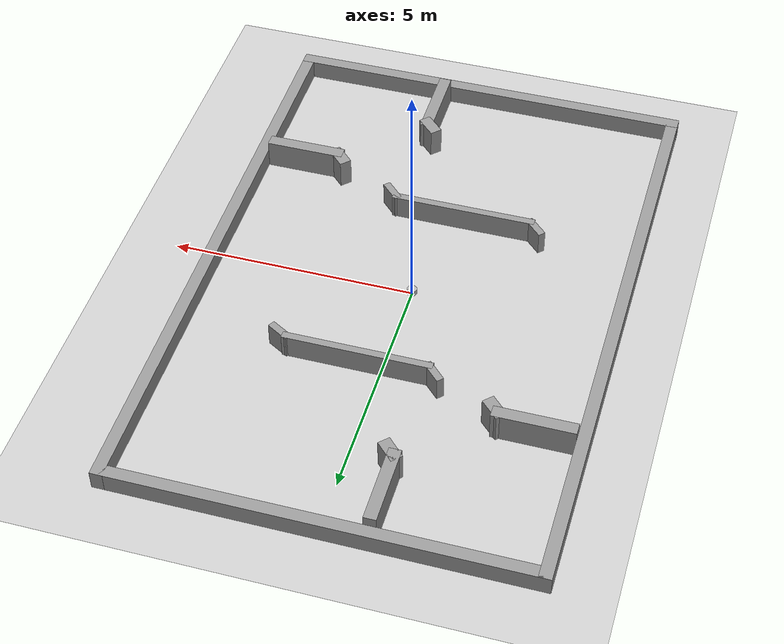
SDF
<sdf version="1.7">
 <world name="default">
  <light name="sun" type="directional">
   <pose>0 0 10 0 -0 0</pose>
   <diffuse>0.8 0.8 0.8 1</diffuse>
   <specular>0.2 0.2 0.2 1</specular>
   <attenuation>
    <range>1000</range>
    <constant>0.9</constant>
    <linear>0.01</linear>
    <quadratic>0.001</quadratic>
   </attenuation>
   <direction>-0.5 0.1 -0.9</direction>
   <spot><inner_angle>0</inner_angle><outer_angle>0</outer_angle><falloff>0</falloff></spot>
  </light>
  <model name="ground_plane">
   <static>1</static>
   <link name="link">
    <collision name="collision">
     <geometry><plane><normal>0 0 1</normal><size>100 100</size></plane></geometry>
     <surface><friction><ode><mu>100</mu><mu2>50</mu2></ode></friction></surface>
    </collision>
    <visual name="visual">
     <cast_shadows>0</cast_shadows>
     <geometry><plane><normal>0 0 1</normal><size>100 100</size></plane></geometry>
     <material>
      <script><uri>file://media/materials/scripts/gazebo.material</uri><name>Gazebo/Grey</name></script>
     </material>
    </visual>
   </link>
  </model>
  <gravity>0 0 -9.8</gravity>
  <magnetic_field>6e-06 2.3e-05 -4.2e-05</magnetic_field>
  <atmosphere type="adiabatic"/>
  <physics type="ode">
   <max_step_size>0.001</max_step_size>
   <real_time_factor>1</real_time_factor>
   <real_time_update_rate>1000</real_time_update_rate>
  </physics>
  <scene><ambient>0.4 0.4 0.4 1</ambient><background>0.7 0.7 0.7 1</background><shadows>1</shadows></scene>
  <audio><device>default</device></audio>
  <spherical_coordinates>
   <surface_model>EARTH_WGS84</surface_model>
   <latitude_deg>0</latitude_deg>
   <longitude_deg>0</longitude_deg>
   <elevation>0</elevation>
   <heading_deg>0</heading_deg>
  </spherical_coordinates>
  <model name="3V3">
   <link name="Wall_16">
    <collision name="Wall_16_Collision">
     <geometry><box><size>12.5 0.25 0.4</size></box></geometry>
     <pose>0 0 0.2 0 -0 0</pose>
    </collision>
    <visual name="Wall_16_Visual">
     <pose>0 0 0.2 0 -0 0</pose>
     <geometry><box><size>12.5 0.25 0.4</size></box></geometry>
     <material>
      <script><uri>file://media/materials/scripts/gazebo.material</uri><name>Gazebo/Grey</name></script>
      <ambient>1 1 1 1</ambient>
     </material>
     <meta><layer>0</layer></meta>
    </visual>
    <pose>-4.125 0 0 0 -0 1.5708</pose>
   </link>
   <link name="Wall_18">
    <collision name="Wall_18_Collision">
     <geometry><box><size>8.5 0.25 0.4</size></box></geometry>
     <pose>0 0 0.2 0 -0 0</pose>
    </collision>
    <visual name="Wall_18_Visual">
     <pose>0 0 0.2 0 -0 0</pose>
     <geometry><box><size>8.5 0.25 0.4</size></box></geometry>
     <material>
      <script><uri>file://media/materials/scripts/gazebo.material</uri><name>Gazebo/Grey</name></script>
      <ambient>1 1 1 1</ambient>
     </material>
     <meta><layer>0</layer></meta>
    </visual>
    <pose>0 6.125 0 0 -0 3.14159</pose>
   </link>
   <link name="Wall_20">
    <collision name="Wall_20_Collision">
     <geometry><box><size>12.5 0.25 0.4</size></box></geometry>
     <pose>0 0 0.2 0 -0 0</pose>
    </collision>
    <visual name="Wall_20_Visual">
     <pose>0 0 0.2 0 -0 0</pose>
     <geometry><box><size>12.5 0.25 0.4</size></box></geometry>
     <material>
      <script><uri>file://media/materials/scripts/gazebo.material</uri><name>Gazebo/Grey</name></script>
      <ambient>1 1 1 1</ambient>
     </material>
     <meta><layer>0</layer></meta>
    </visual>
    <pose>4.125 0 0 0 -0 1.5708</pose>
   </link>
   <link name="Wall_22">
    <collision name="Wall_22_Collision">
     <geometry><box><size>1.625 0.25 0.6</size></box></geometry>
     <pose>0 0 0.3 0 -0 0</pose>
    </collision>
    <visual name="Wall_22_Visual">
     <pose>0 0 0.3 0 -0 0</pose>
     <geometry><box><size>1.625 0.25 0.6</size></box></geometry>
     <material>
      <script><uri>file://media/materials/scripts/gazebo.material</uri><name>Gazebo/Grey</name></script>
      <ambient>1 1 1 1</ambient>
     </material>
     <meta><layer>0</layer></meta>
    </visual>
    <pose>3.1875 -3.026 0 0 -0 3.14159</pose>
   </link>
   <link name="Wall_24">
    <collision name="Wall_24_Collision">
     <geometry><box><size>1.625 0.25 0.6</size></box></geometry>
     <pose>0 0 0.3 0 -0 0</pose>
    </collision>
    <visual name="Wall_24_Visual">
     <pose>0 0 0.3 0 -0 0</pose>
     <geometry><box><size>1.625 0.25 0.6</size></box></geometry>
     <material>
      <script><uri>file://media/materials/scripts/gazebo.material</uri><name>Gazebo/Grey</name></script>
      <ambient>1 1 1 1</ambient>
     </material>
     <meta><layer>0</layer></meta>
    </visual>
    <pose>-3.1875 3.026 0 0 -0 0</pose>
   </link>
   <link name="Wall_26">
    <collision name="Wall_26_Collision">
     <geometry><box><size>1.625 0.25 0.6</size></box></geometry>
     <pose>0 0 0.3 0 -0 0</pose>
    </collision>
    <visual name="Wall_26_Visual">
     <pose>0 0 0.3 0 -0 0</pose>
     <geometry><box><size>1.625 0.25 0.6</size></box></geometry>
     <material>
      <script><uri>file://media/materials/scripts/gazebo.material</uri><name>Gazebo/Grey</name></script>
      <ambient>1 1 1 1</ambient>
     </material>
     <meta><layer>0</layer></meta>
    </visual>
    <pose>0.93 -5.1875 0 0 -0 1.5708</pose>
   </link>
   <link name="Wall_54">
    <collision name="Wall_54_Collision">
     <geometry><box><size>8.5 0.25 0.4</size></box></geometry>
     <pose>0 0 0.2 0 -0 0</pose>
    </collision>
    <visual name="Wall_54_Visual">
     <pose>0 0 0.2 0 -0 0</pose>
     <geometry><box><size>8.5 0.25 0.4</size></box></geometry>
     <material>
      <script><uri>file://media/materials/scripts/gazebo.material</uri><name>Gazebo/Grey</name></script>
      <ambient>1 1 1 1</ambient>
     </material>
     <meta><layer>0</layer></meta>
    </visual>
    <pose>0 -6.125 0 0 -0 3.14159</pose>
   </link>
   <link name="Wall_58">
    <collision name="Wall_58_Collision">
     <geometry><box><size>1.625 0.25 0.6</size></box></geometry>
     <pose>0 0 0.3 0 -0 0</pose>
    </collision>
    <visual name="Wall_58_Visual">
     <pose>0 0 0.3 0 -0 0</pose>
     <geometry><box><size>1.625 0.25 0.6</size></box></geometry>
     <material>
      <script><uri>file://media/materials/scripts/gazebo.material</uri><name>Gazebo/Grey</name></script>
      <ambient>1 1 1 1</ambient>
     </material>
     <meta><layer>0</layer></meta>
    </visual>
    <pose>-0.93 5.1875 0 0 -0 -1.5708</pose>
   </link>
   <link name="Wall_60">
    <collision name="Wall_60_Collision">
     <geometry><box><size>3 0.15 0.5</size></box></geometry>
     <pose>0 0 0.25 0 -0 0</pose>
    </collision>
    <visual name="Wall_60_Visual">
     <pose>0 0 0.25 0 -0 0</pose>
     <geometry><box><size>3 0.15 0.5</size></box></geometry>
     <material>
      <script><uri>file://media/materials/scripts/gazebo.material</uri><name>Gazebo/Grey</name></script>
      <ambient>1 1 1 1</ambient>
     </material>
     <meta><layer>0</layer></meta>
    </visual>
    <pose>-0.475 -2.175 0 0 -0 3.14159</pose>
   </link>
   <link name="Wall_62">
    <collision name="Wall_62_Collision">
     <geometry><box><size>3 0.15 0.5</size></box></geometry>
     <pose>0 0 0.25 0 -0 0</pose>
    </collision>
    <visual name="Wall_62_Visual">
     <pose>0 0 0.25 0 -0 0</pose>
     <geometry><box><size>3 0.15 0.5</size></box></geometry>
     <material>
      <script><uri>file://media/materials/scripts/gazebo.material</uri><name>Gazebo/Grey</name></script>
      <ambient>1 1 1 1</ambient>
     </material>
     <meta><layer>0</layer></meta>
    </visual>
    <pose>0.475 2.175 0 0 -0 0</pose>
   </link>
   <link name="Wall_64">
    <collision name="Wall_64_Collision">
     <geometry><box><size>0.5 0.15 0.5</size></box></geometry>
     <pose>0 0 0.25 0 -0 0</pose>
    </collision>
    <visual name="Wall_64_Visual">
     <pose>0 0 0.25 0 -0 0</pose>
     <geometry><box><size>0.5 0.15 0.5</size></box></geometry>
     <material>
      <script><uri>file://media/materials/scripts/gazebo.material</uri><name>Gazebo/Grey</name></script>
      <ambient>1 1 1 1</ambient>
     </material>
     <meta><layer>0</layer></meta>
    </visual>
    <pose>-2.02374 -2.05126 0 0 -0 2.35619</pose>
   </link>
   <link name="Wall_66">
    <collision name="Wall_66_Collision">
     <geometry><box><size>0.5 0.15 0.5</size></box></geometry>
     <pose>0 0 0.25 0 -0 0</pose>
    </collision>
    <visual name="Wall_66_Visual">
     <pose>0 0 0.25 0 -0 0</pose>
     <geometry><box><size>0.5 0.15 0.5</size></box></geometry>
     <material>
      <script><uri>file://media/materials/scripts/gazebo.material</uri><name>Gazebo/Grey</name></script>
      <ambient>1 1 1 1</ambient>
     </material>
     <meta><layer>0</layer></meta>
    </visual>
    <pose>1.07374 -2.29874 0 0 -0 -0.785398</pose>
   </link>
   <link name="Wall_68">
    <collision name="Wall_68_Collision">
     <geometry><box><size>0.5 0.15 0.5</size></box></geometry>
     <pose>0 0 0.25 0 -0 0</pose>
    </collision>
    <visual name="Wall_68_Visual">
     <pose>0 0 0.25 0 -0 0</pose>
     <geometry><box><size>0.5 0.15 0.5</size></box></geometry>
     <material>
      <script><uri>file://media/materials/scripts/gazebo.material</uri><name>Gazebo/Grey</name></script>
      <ambient>1 1 1 1</ambient>
     </material>
     <meta><layer>0</layer></meta>
    </visual>
    <pose>-1.0735 2.2985 0 0 -0 2.35619</pose>
   </link>
   <link name="Wall_70">
    <collision name="Wall_70_Collision">
     <geometry><box><size>0.5 0.15 0.5</size></box></geometry>
     <pose>0 0 0.25 0 -0 0</pose>
    </collision>
    <visual name="Wall_70_Visual">
     <pose>0 0 0.25 0 -0 0</pose>
     <geometry><box><size>0.5 0.15 0.5</size></box></geometry>
     <material>
      <script><uri>file://media/materials/scripts/gazebo.material</uri><name>Gazebo/Grey</name></script>
      <ambient>1 1 1 1</ambient>
     </material>
     <meta><layer>0</layer></meta>
    </visual>
    <pose>2.0515 2.0875 0 0 -0 -0.523754</pose>
   </link>
   <link name="Wall_73">
    <collision name="Wall_73_Collision">
     <geometry><box><size>0.5 0.25 0.6</size></box></geometry>
     <pose>0 0 0.3 0 -0 0</pose>
    </collision>
    <visual name="Wall_73_Visual">
     <pose>0 0 0.3 0 -0 0</pose>
     <geometry><box><size>0.5 0.25 0.6</size></box></geometry>
     <material>
      <script><uri>file://media/materials/scripts/gazebo.material</uri><name>Gazebo/Grey</name></script>
      <ambient>1 1 1 1</ambient>
     </material>
     <meta><layer>0</layer></meta>
    </visual>
    <pose>2.4115 -2.9375 0 0 -0 2.35619</pose>
   </link>
   <link name="Wall_75">
    <collision name="Wall_75_Collision">
     <geometry><box><size>0.5 0.25 0.6</size></box></geometry>
     <pose>0 0 0.3 0 -0 0</pose>
    </collision>
    <visual name="Wall_75_Visual">
     <pose>0 0 0.3 0 -0 0</pose>
     <geometry><box><size>0.5 0.25 0.6</size></box></geometry>
     <material>
      <script><uri>file://media/materials/scripts/gazebo.material</uri><name>Gazebo/Grey</name></script>
      <ambient>1 1 1 1</ambient>
     </material>
     <meta><layer>0</layer></meta>
    </visual>
    <pose>0.841612 -4.41161 0 0 -0 2.35619</pose>
   </link>
   <link name="Wall_77">
    <collision name="Wall_77_Collision">
     <geometry><box><size>0.5 0.25 0.6</size></box></geometry>
     <pose>0 0 0.3 0 -0 0</pose>
    </collision>
    <visual name="Wall_77_Visual">
     <pose>0 0 0.3 0 -0 0</pose>
     <geometry><box><size>0.5 0.25 0.6</size></box></geometry>
     <material>
      <script><uri>file://media/materials/scripts/gazebo.material</uri><name>Gazebo/Grey</name></script>
      <ambient>1 1 1 1</ambient>
     </material>
     <meta><layer>0</layer></meta>
    </visual>
    <pose>-2.41161 2.93761 0 0 -0 -0.785398</pose>
   </link>
   <link name="Wall_79">
    <collision name="Wall_79_Collision">
     <geometry><box><size>0.5 0.25 0.6</size></box></geometry>
     <pose>0 0 0.3 0 -0 0</pose>
    </collision>
    <visual name="Wall_79_Visual">
     <pose>0 0 0.3 0 -0 0</pose>
     <geometry><box><size>0.5 0.25 0.6</size></box></geometry>
     <material>
      <script><uri>file://media/materials/scripts/gazebo.material</uri><name>Gazebo/Grey</name></script>
      <ambient>1 1 1 1</ambient>
     </material>
     <meta><layer>0</layer></meta>
    </visual>
    <pose>-0.841612 4.41161 0 0 -0 -0.785398</pose>
   </link>
   <static>1</static>
  </model>
  <model name="mbot">
   <link name="base_footprint">
    <inertial>
     <pose>0.002857 0 0.095 0 -0 0</pose>
     <mass>0.42</mass>
     <inertia>
      <ixx>0.0134043</ixx>
      <ixy>0</ixy>
      <ixz>0.000114</ixz>
      <iyy>0.0134728</iyy>
      <iyz>0</iyz>
      <izz>0.0211486</izz>
     </inertia>
    </inertial>
    <collision name="base_footprint_fixed_joint_lump__base_link_collision">
     <pose>0 0 0.076 0 -0 0</pose>
     <geometry><cylinder><length>0.12</length><radius>0.1</radius></cylinder></geometry>
    </collision>
    <collision name="base_footprint_fixed_joint_lump__caster_link_collision_1">
     <pose>0.06 0 0 1.57079 -0 0</pose>
     <geometry><sphere><radius>0.016</radius></sphere></geometry>
     <surface>
      <contact><ode><kp>1e+06</kp><kd>10</kd></ode></contact>
      <friction><ode><mu>0</mu><mu2>0</mu2></ode></friction>
     </surface>
    </collision>
    <collision name="base_footprint_fixed_joint_lump__imu_link_collision_2">
     <pose>0 0 0.096 0 -0 0</pose>
     <geometry><box><size>0.02 0.02 0.02</size></box></geometry>
    </collision>
    <collision name="base_footprint_fixed_joint_lump__laser_link_collision_3">
     <pose>0 0 0.151 0 -0 0</pose>
     <geometry><cylinder><length>0.02</length><radius>0.02</radius></cylinder></geometry>
    </collision>
    <visual name="base_footprint_fixed_joint_lump__base_link_visual">
     <pose>0 0 0.076 0 -0 0</pose>
     <geometry><cylinder><length>0.12</length><radius>0.1</radius></cylinder></geometry>
    </visual>
    <visual name="base_footprint_fixed_joint_lump__caster_link_visual_1">
     <pose>0.06 0 0 1.57079 -0 0</pose>
     <geometry><sphere><radius>0.016</radius></sphere></geometry>
     <material>
      <script><name>Gazebo/Black</name><uri>file://media/materials/scripts/gazebo.material</uri></script>
     </material>
    </visual>
    <visual name="base_footprint_fixed_joint_lump__imu_link_visual_2">
     <pose>0 0 0.096 0 -0 0</pose>
     <geometry><box><size>0.02 0.02 0.02</size></box></geometry>
    </visual>
    <visual name="base_footprint_fixed_joint_lump__laser_link_visual_3">
     <pose>0 0 0.151 0 -0 0</pose>
     <geometry><cylinder><length>0.02</length><radius>0.02</radius></cylinder></geometry>
     <material>
      <script><name>Gazebo/Black</name><uri>file://media/materials/scripts/gazebo.material</uri></script>
     </material>
    </visual>
    <sensor name="imu_sensor" type="imu">
     <plugin name="imu_plugin" filename="libgazebo_ros_imu_sensor.so">
      <ros><namespace>/</namespace><remapping>~/out:=imu</remapping></ros>
      <initial_orientation_as_reference>0</initial_orientation_as_reference>
     </plugin>
     <always_on>1</always_on>
     <update_rate>100</update_rate>
     <visualize>1</visualize>
     <imu>
      <angular_velocity>
       <x>
        <noise type="gaussian">
         <mean>0</mean>
         <stddev>0.0002</stddev>
         <bias_mean>7.5e-06</bias_mean>
         <bias_stddev>8e-07</bias_stddev>
        </noise>
       </x>
       <y>
        <noise type="gaussian">
         <mean>0</mean>
         <stddev>0.0002</stddev>
         <bias_mean>7.5e-06</bias_mean>
         <bias_stddev>8e-07</bias_stddev>
        </noise>
       </y>
       <z>
        <noise type="gaussian">
         <mean>0</mean>
         <stddev>0.0002</stddev>
         <bias_mean>7.5e-06</bias_mean>
         <bias_stddev>8e-07</bias_stddev>
        </noise>
       </z>
      </angular_velocity>
      <linear_acceleration>
       <x>
        <noise type="gaussian">
         <mean>0</mean>
         <stddev>0.017</stddev>
         <bias_mean>0.1</bias_mean>
         <bias_stddev>0.001</bias_stddev>
        </noise>
       </x>
       <y>
        <noise type="gaussian">
         <mean>0</mean>
         <stddev>0.017</stddev>
         <bias_mean>0.1</bias_mean>
         <bias_stddev>0.001</bias_stddev>
        </noise>
       </y>
       <z>
        <noise type="gaussian">
         <mean>0</mean>
         <stddev>0.017</stddev>
         <bias_mean>0.1</bias_mean>
         <bias_stddev>0.001</bias_stddev>
        </noise>
       </z>
      </linear_acceleration>
     </imu>
     <pose>0 0 0.096 0 -0 0</pose>
    </sensor>
    <sensor name="laser_sensor" type="ray">
     <always_on>1</always_on>
     <visualize>1</visualize>
     <update_rate>5</update_rate>
     <ray>
      <scan>
       <horizontal>
        <samples>360</samples>
        <resolution>1</resolution>
        <min_angle>0</min_angle>
        <max_angle>6.28</max_angle>
       </horizontal>
       <vertical><samples>1</samples><min_angle>0</min_angle><max_angle>0</max_angle></vertical>
      </scan>
      <range><min>0.12</min><max>3.5</max><resolution>0.015</resolution></range>
      <noise><type>gaussian</type><mean>0</mean><stddev>0.01</stddev></noise>
     </ray>
     <plugin name="laserscan" filename="libgazebo_ros_ray_sensor.so">
      <ros><remapping>~/out:=scan</remapping></ros>
      <output_type>sensor_msgs/LaserScan</output_type>
      <frame_name>laser_link</frame_name>
     </plugin>
     <pose>0 0 0.151 0 -0 0</pose>
    </sensor>
    <sensor name="ultrasonic_sensor" type="ray">
     <visualize>1</visualize>
     <update_rate>5</update_rate>
     <ray>
      <scan>
       <horizontal>
        <samples>5</samples>
        <resolution>1</resolution>
        <min_angle>-0.12</min_angle>
        <max_angle>0.12</max_angle>
       </horizontal>
       <vertical>
        <samples>5</samples>
        <resolution>1</resolution>
        <min_angle>-0.01</min_angle>
        <max_angle>0.01</max_angle>
       </vertical>
      </scan>
      <range><min>0.02</min><max>4</max><resolution>0.01</resolution></range>
      <noise><type>gaussian</type><mean>0</mean><stddev>0.01</stddev></noise>
     </ray>
     <plugin name="ultrasonic_sensor_controller" filename="libgazebo_ros_ray_sensor.so">
      <ros><remapping>~/out:=ultrasonic_sensor_1</remapping></ros>
      <output_type>sensor_msgs/Range</output_type>
      <radiation_type>ultrasound</radiation_type>
      <frame_name>ultrasonic_sensor_link</frame_name>
     </plugin>
     <pose>0.07 0 0.152 0 -0 0</pose>
    </sensor>
   </link>
   <joint name="left_wheel_joint" type="revolute">
    <pose relative_to="base_footprint">-0.02 0.1 0.016 0 -0 0</pose>
    <parent>base_footprint</parent>
    <child>left_wheel_link</child>
    <axis>
     <xyz>0 1 0</xyz>
     <limit><lower>-1e+16</lower><upper>1e+16</upper></limit>
     <dynamics><spring_reference>0</spring_reference><spring_stiffness>0</spring_stiffness></dynamics>
    </axis>
   </joint>
   <link name="left_wheel_link">
    <pose relative_to="left_wheel_joint">0 0 0 0 -0 0</pose>
    <inertial>
     <mass>0.2</mass>
     <inertia>
      <ixx>0.000190417</ixx>
      <ixy>0</ixy>
      <ixz>0</ixz>
      <iyy>0.0001904</iyy>
      <iyz>0</iyz>
      <izz>0.00036</izz>
     </inertia>
    </inertial>
    <collision name="left_wheel_link_collision">
     <pose>0 0 0 1.57079 -0 0</pose>
     <geometry><cylinder><length>0.04</length><radius>0.032</radius></cylinder></geometry>
    </collision>
    <visual name="left_wheel_link_visual">
     <pose>0 0 0 1.57079 -0 0</pose>
     <geometry><cylinder><length>0.04</length><radius>0.032</radius></cylinder></geometry>
    </visual>
   </link>
   <joint name="right_wheel_joint" type="revolute">
    <pose relative_to="base_footprint">-0.02 -0.1 0.016 0 -0 0</pose>
    <parent>base_footprint</parent>
    <child>right_wheel_link</child>
    <axis>
     <xyz>0 1 0</xyz>
     <limit><lower>-1e+16</lower><upper>1e+16</upper></limit>
     <dynamics><spring_reference>0</spring_reference><spring_stiffness>0</spring_stiffness></dynamics>
    </axis>
   </joint>
   <link name="right_wheel_link">
    <pose relative_to="right_wheel_joint">0 0 0 0 -0 0</pose>
    <inertial>
     <mass>0.2</mass>
     <inertia>
      <ixx>0.000190417</ixx>
      <ixy>0</ixy>
      <ixz>0</ixz>
      <iyy>0.0001904</iyy>
      <iyz>0</iyz>
      <izz>0.00036</izz>
     </inertia>
    </inertial>
    <collision name="right_wheel_link_collision">
     <pose>0 0 0 1.57079 -0 0</pose>
     <geometry><cylinder><length>0.04</length><radius>0.032</radius></cylinder></geometry>
    </collision>
    <visual name="right_wheel_link_visual">
     <pose>0 0 0 1.57079 -0 0</pose>
     <geometry><cylinder><length>0.04</length><radius>0.032</radius></cylinder></geometry>
    </visual>
   </link>
   <static>0</static>
   <plugin name="diff_drive" filename="libgazebo_ros_diff_drive.so">
    <ros><namespace>/</namespace><remapping>cmd_vel:=cmd_vel</remapping><remapping>odom:=odom</remapping></ros>
    <update_rate>30</update_rate>
    <left_joint>left_wheel_joint</left_joint>
    <right_joint>right_wheel_joint</right_joint>
    <wheel_separation>0.2</wheel_separation>
    <wheel_diameter>0.065</wheel_diameter>
    <max_wheel_torque>20</max_wheel_torque>
    <max_wheel_acceleration>1.0</max_wheel_acceleration>
    <publish_odom>1</publish_odom>
    <publish_odom_tf>1</publish_odom_tf>
    <publish_wheel_tf>1</publish_wheel_tf>
    <odometry_frame>odom</odometry_frame>
    <robot_base_frame>base_footprint</robot_base_frame>
   </plugin>
   <plugin name="fishbot_joint_state" filename="libgazebo_ros_joint_state_publisher.so">
    <ros><remapping>~/out:=joint_states</remapping></ros>
    <update_rate>30</update_rate>
    <joint_name>right_wheel_joint</joint_name>
    <joint_name>left_wheel_joint</joint_name>
   </plugin>
   <pose>0.001123 -0.000129 0.016 1e-06 1.4e-05 -0.006304</pose>
  </model>
 </world>
</sdf>
